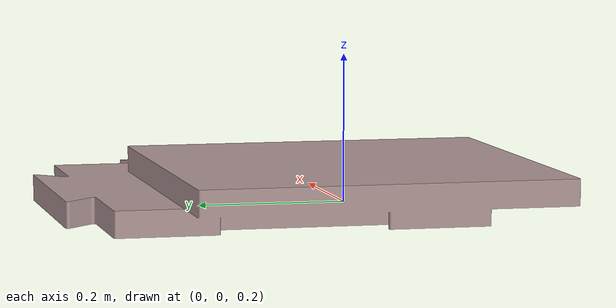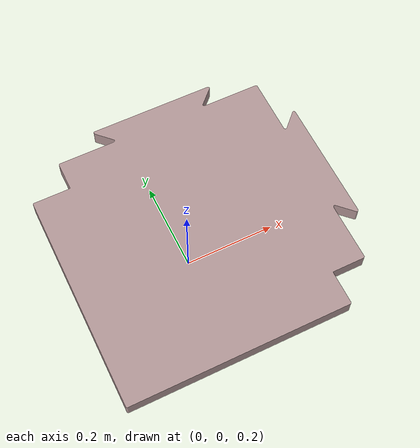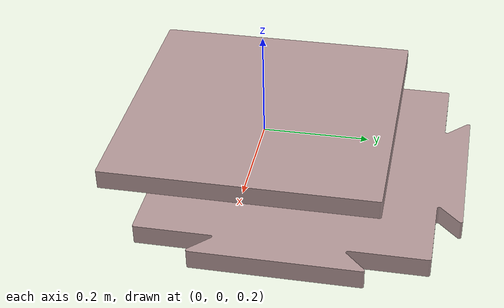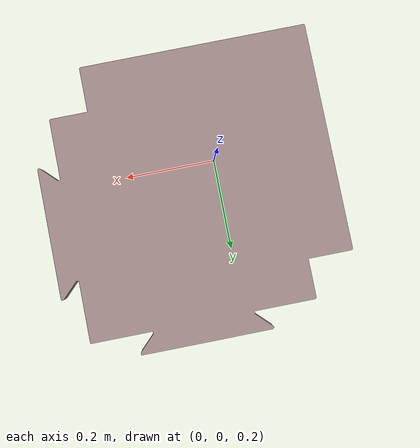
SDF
<?xml version="1.0" ?>
<!--Created by Robert Forristall-->

<sdf version="1.6">
    <model name = "paver_9">
        <pose>0 0 0 0 0 0</pose>
        <link name = "paver_link">
            <inertial>
                <mass>5.0</mass>
                <inertia>
                    <ixx>0.0</ixx>
                    <ixy>0.0</ixy>
                    <ixz>0.0</ixz>
                    <iyy>0.0</iyy>
                    <iyz>0.0</iyz>
                    <izz>0.0</izz>
                </inertia>
            </inertial>
            <collision name = "paver_collision">
                <pose>0 0 0 0 0 0</pose>
                <geometry>
                    <mesh>
                        <uri>model://paver/meshes/small_paver_thin.dae</uri>
                    </mesh>
                </geometry>
                <surface>
                    <bounce>
                        <restitution_coefficient>0</restitution_coefficient>
                    </bounce>
                    <friction>
                        <ode>
                            <fdir1>0 0 0</fdir1>
                            <mu>1000</mu>
                            <mu2>1000</mu2>
                            <slip1>0</slip1>
                            <slip2>0</slip2>
                        </ode>
                    </friction>
                    <contact>
                        <collide_bitmask>0x0100</collide_bitmask>
                        <ode>
                            <max_vel>100</max_vel>
                            <min_depth>0.002</min_depth>
                        </ode>
                    </contact>
                </surface>
            </collision>
            <visual name = "paver_visual">
                <geometry>
                    <mesh>
                        <uri>model://paver/meshes/small_paver_thin.dae</uri>
                    </mesh>
                </geometry>
            </visual>
        </link>
    </model>
</sdf>
